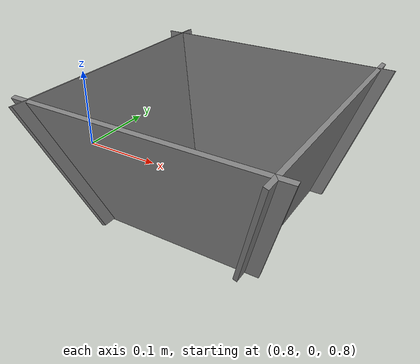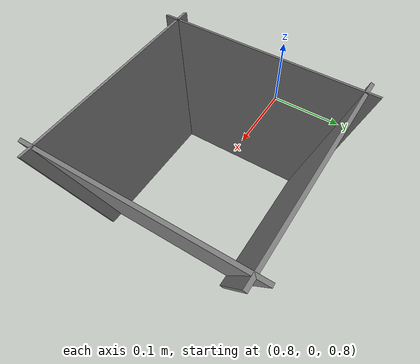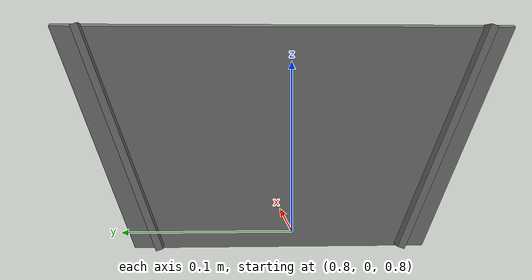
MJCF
<?xml version="1.0" encoding="utf-8"?>
<mujoco>

    <asset>

        <mesh name="KASE" file="box/Box_mini_100.stl"/>

        <mesh name="yan1mesh" file="kutu/yan1.stl"/>
        <mesh name="yan2mesh" file="kutu/yan2.stl"/>
        <mesh name="yan3mesh" file="kutu/yan3.stl"/>
        <mesh name="yan4mesh" file="kutu/yan4.stl"/>
        <mesh name="tabanmesh" file="kutu/taban11.stl"/>
   </asset>

	<worldbody>
		<body name="kase" pos="0.99 0.0 0.77">
            <inertial pos="0 0 0" quat="0.659267 -0.259505 -0.260945 0.655692" mass="60.864" diaginertia="6.0869 5.81635 4.20915" />

                <!--  Collision geoms -->
                <geom pos = "-0.02 0.0 0.0" solimp="0.01 0.010 0.01" margin="0.01" type="mesh" mesh="yan1mesh"/>
                <geom pos = "0.0 0.02 0.0" solimp="0.01 0.010 0.01" margin="0.01" type="mesh" mesh="yan2mesh"/>
                <geom pos = "0.02 0.0 0.0" solimp="0.01 0.010 0.01" margin="0.01" type="mesh" mesh="yan3mesh"/>
                <geom pos = "0.0 -0.02 0.0" solimp="0.01 0.010 0.01" margin="0.01" type="mesh" mesh="yan4mesh"/>

                <!-- Visualization geoms -->

        </body>
	</worldbody>
</mujoco>
